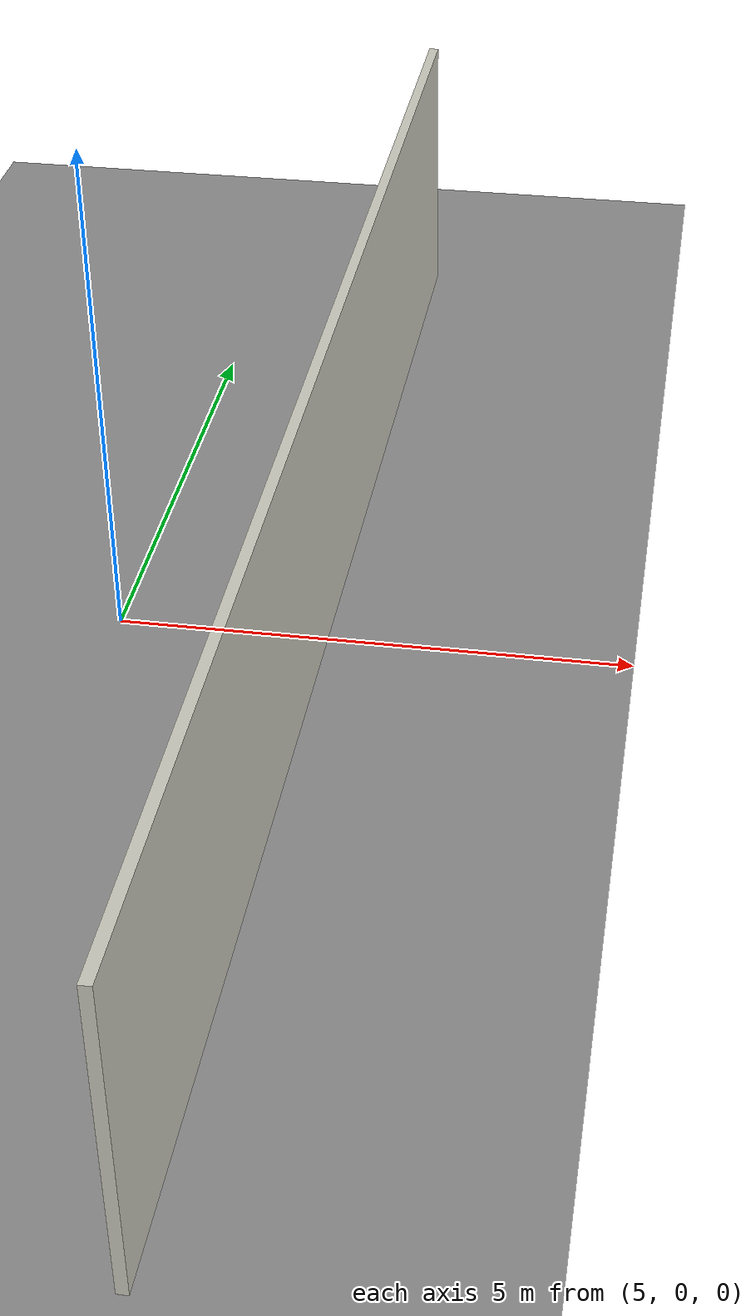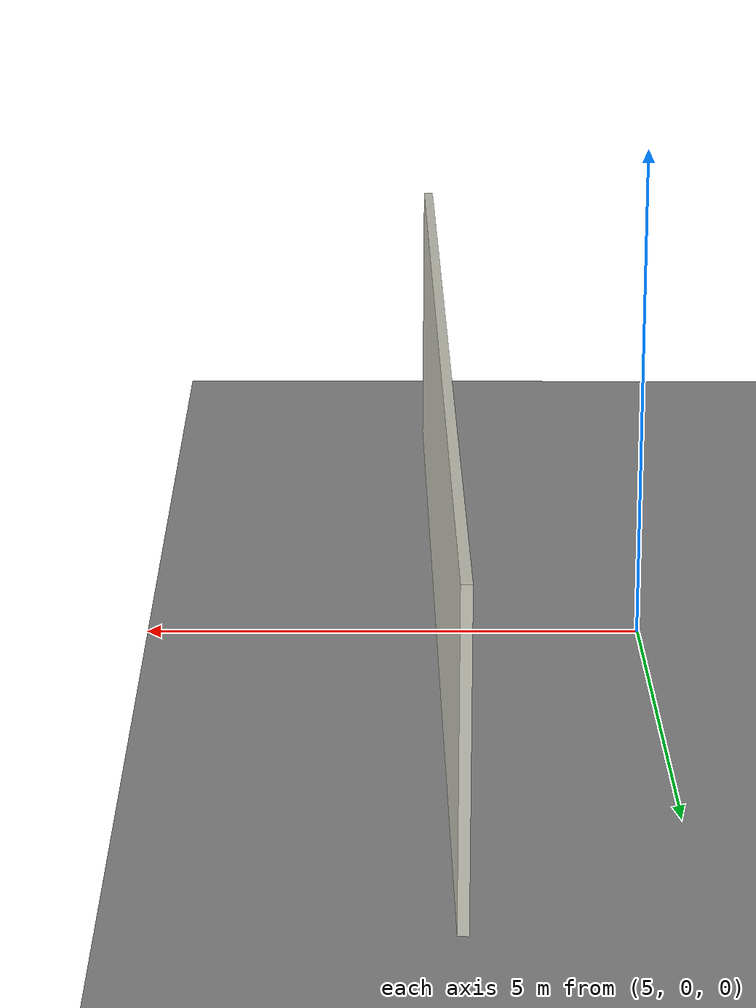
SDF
<?xml version="1.0"?>
<sdf version="1.6"><world name="person_validation">
  <physics type="ode"><max_step_size>0.01</max_step_size><real_time_update_rate>100</real_time_update_rate></physics>
  <scene><ambient>0.6 0.6 0.6 1</ambient><background>0.75 0.80 0.85 1</background><shadows>false</shadows></scene>
  <light name="sun" type="directional"><pose>0 0 10 0 0 0</pose><diffuse>0.9 0.9 0.9 1</diffuse><specular>0.1 0.1 0.1 1</specular><direction>-0.4 0.2 -1</direction></light>
  <model name="floor"><static>true</static><link name="floor_link">
    <collision name="collision"><geometry><plane><normal>0 0 1</normal><size>20 20</size></plane></geometry></collision>
    <visual name="visual"><geometry><plane><normal>0 0 1</normal><size>20 20</size></plane></geometry><material><ambient>0.55 0.55 0.55 1</ambient><diffuse>0.55 0.55 0.55 1</diffuse></material></visual>
  </link></model>
  <model name="back_wall"><static>true</static><pose>7 0 1.5 0 0 0</pose><link name="wall">
    <visual name="visual"><geometry><box><size>0.1 15 3</size></box></geometry><material><ambient>0.8 0.8 0.75 1</ambient><diffuse>0.8 0.8 0.75 1</diffuse></material></visual>
  </link></model>

  <model name="validation_camera"><static>true</static><pose>0 0 1.03 0 0 0</pose><link name="camera_link">
    <sensor name="rgb" type="camera"><always_on>true</always_on><update_rate>2</update_rate>
      <camera><horizontal_fov>1.085595</horizontal_fov><image><width>640</width><height>480</height><format>R8G8B8</format></image><clip><near>0.03</near><far>100</far></clip></camera>
      <plugin name="rgb_driver" filename="libgazebo_ros_camera.so"><ros><namespace>/person_validation</namespace><remapping>image_raw:=image_raw</remapping></ros><camera_name>rgb</camera_name><frame_name>camera_link</frame_name></plugin>
    </sensor>
  </link></model>
</world></sdf>
